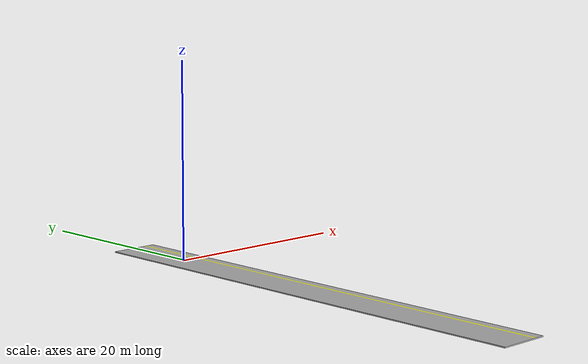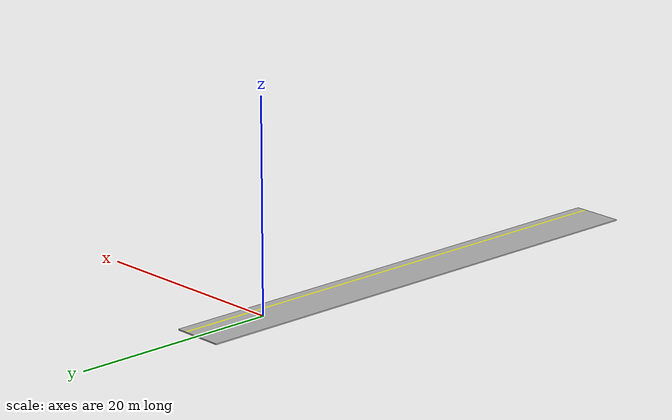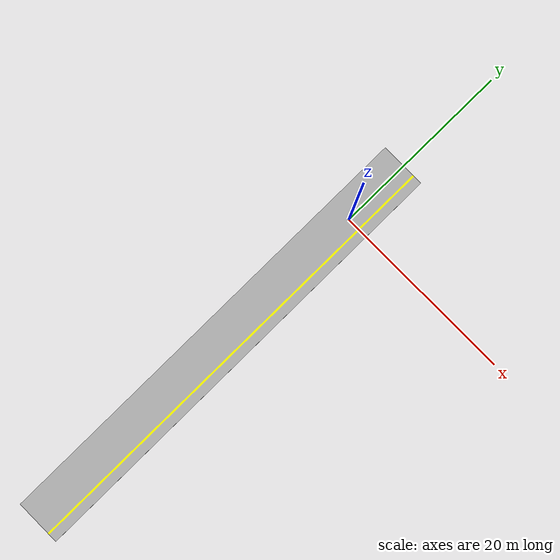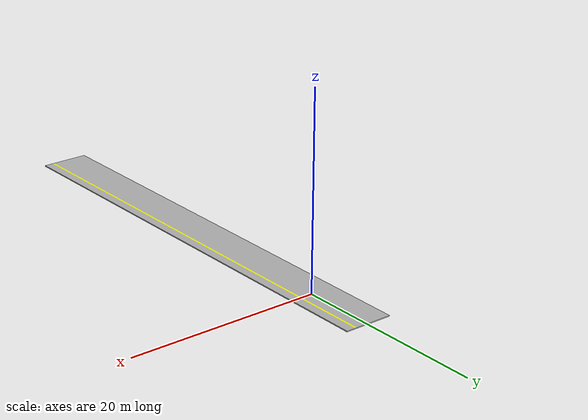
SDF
<?xml version='1.0'?>
<sdf version='1.6'>
  <model name='right_50m'>
    <model name='left_50m'>
      <link name='link_0'>
        <pose frame=''>0 0 0 0 -0 0</pose>
        <inertial>
          <mass>1</mass>
          <inertia>
            <ixx>0.166667</ixx>
            <ixy>0</ixy>
            <ixz>0</ixz>
            <iyy>0.166667</iyy>
            <iyz>0</iyz>
            <izz>0.166667</izz>
          </inertia>
        </inertial>
        <visual name='visual'>
          <pose frame=''>0 0 0 0 -0 0</pose>
          <geometry>
            <mesh>
              <uri>model://left_50m/left_50m.dae</uri>
              <scale>1 1 1</scale>
            </mesh>
          </geometry>
          <cast_shadows>1</cast_shadows>
          <transparency>0</transparency>
        </visual>
        <collision name='collision'>
          <laser_retro>0</laser_retro>
          <max_contacts>10</max_contacts>
          <pose frame=''>0 0 0 0 -0 0</pose>
          <geometry>
            <mesh>
              <uri>model://left_50m/left_50m.dae</uri>
            </mesh>
          </geometry>
          <surface>
            <friction>
              <ode>
                <mu>1</mu>
                <mu2>1</mu2>
                <fdir1>0 0 0</fdir1>
                <slip1>0</slip1>
                <slip2>0</slip2>
              </ode>
              <torsional>
                <coefficient>1</coefficient>
                <patch_radius>0</patch_radius>
                <surface_radius>0</surface_radius>
                <use_patch_radius>1</use_patch_radius>
                <ode>
                  <slip>0</slip>
                </ode>
              </torsional>
            </friction>
            <bounce>
              <restitution_coefficient>0</restitution_coefficient>
              <threshold>1e+06</threshold>
            </bounce>
            <contact>
              <collide_without_contact>0</collide_without_contact>
              <collide_without_contact_bitmask>1</collide_without_contact_bitmask>
              <collide_bitmask>1</collide_bitmask>
              <ode>
                <soft_cfm>0</soft_cfm>
                <soft_erp>0.2</soft_erp>
                <kp>1e+13</kp>
                <kd>1</kd>
                <max_vel>0.01</max_vel>
                <min_depth>0</min_depth>
              </ode>
              <bullet>
                <split_impulse>1</split_impulse>
                <split_impulse_penetration_threshold>-0.01</split_impulse_penetration_threshold>
                <soft_cfm>0</soft_cfm>
                <soft_erp>0.2</soft_erp>
                <kp>1e+13</kp>
                <kd>1</kd>
              </bullet>
            </contact>
          </surface>
        </collision>
      </link>
      <static>0</static>
      <allow_auto_disable>1</allow_auto_disable>
      <pose frame=''>5e-06 -3.6e-05 0 0 -0 3.13981</pose>
    </model>
    <static>1</static>
    <allow_auto_disable>1</allow_auto_disable>
  </model>
</sdf>
